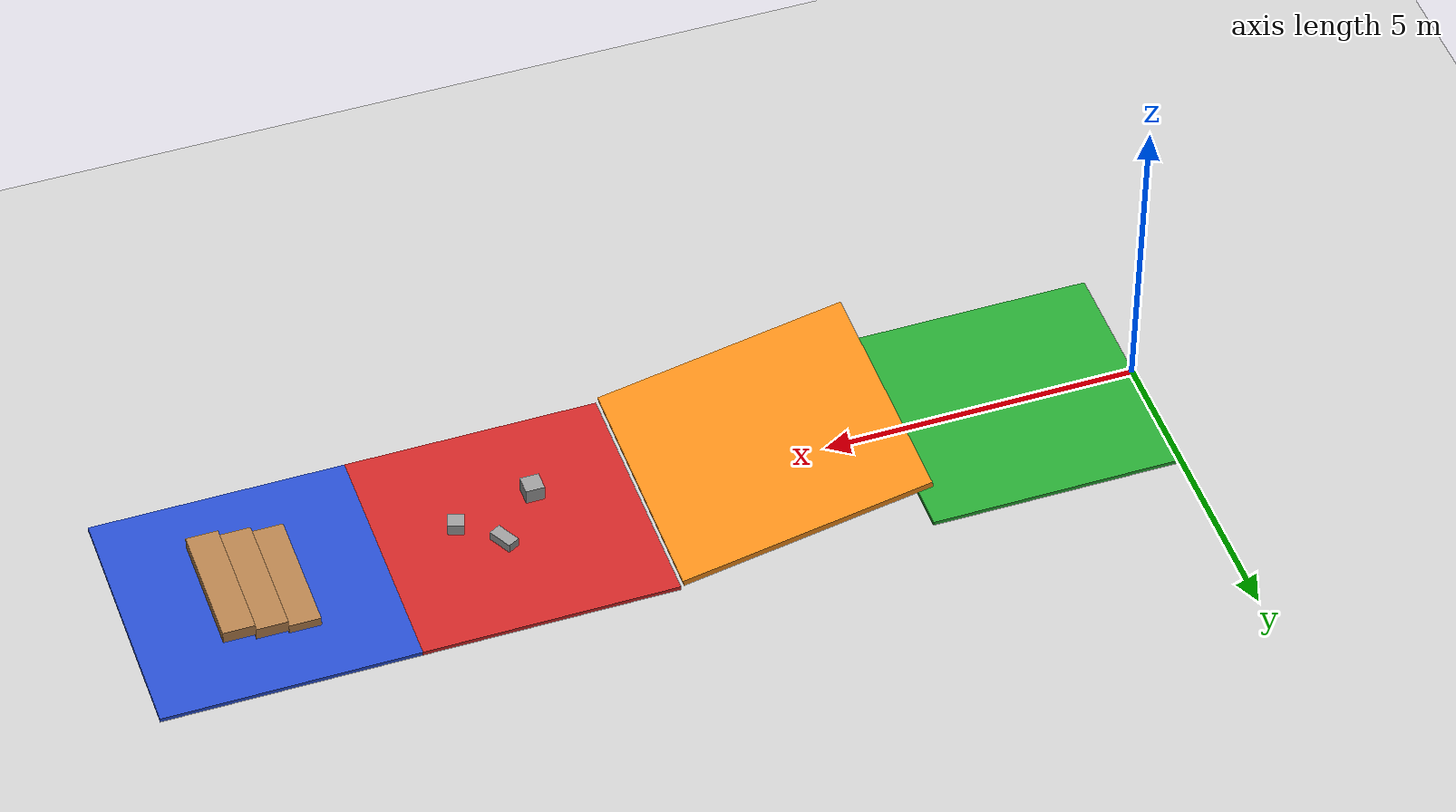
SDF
<!-- File: ~/terrain_locomotion_ws/src/terrain_locomotion/worlds/terrain_world.world -->

<?xml version="1.0"?>
<sdf version="1.6">
  <world name="terrain_world">

    <!-- Physics settings -->
    <physics type="ode">
      <max_step_size>0.001</max_step_size>
      <real_time_factor>1.0</real_time_factor>
      <real_time_update_rate>1000</real_time_update_rate>
    </physics>

    <!-- Lighting -->
    <include>
      <uri>model://sun</uri>
    </include>

    <!-- Ground plane -->
    <include>
      <uri>model://ground_plane</uri>
    </include>

    <!-- Flat terrain section (starting area) -->
    <model name="flat_terrain">
      <static>true</static>
      <pose>2 0 0 0 0 0</pose>
      <link name="link">
        <collision name="collision">
          <geometry>
            <box>
              <size>4 4 0.1</size>
            </box>
          </geometry>
        </collision>
        <visual name="visual">
          <geometry>
            <box>
              <size>4 4 0.1</size>
            </box>
          </geometry>
          <material>
            <script>
              <name>Gazebo/Green</name>
            </script>
          </material>
        </visual>
      </link>
    </model>

    <!-- Sloped terrain section -->
    <model name="slope_terrain">
      <static>true</static>
      <pose>6 0 0.5 0 0.2 0</pose>
      <link name="link">
        <collision name="collision">
          <geometry>
            <box>
              <size>4 4 0.1</size>
            </box>
          </geometry>
        </collision>
        <visual name="visual">
          <geometry>
            <box>
              <size>4 4 0.1</size>
            </box>
          </geometry>
          <material>
            <script>
              <name>Gazebo/Orange</name>
            </script>
          </material>
        </visual>
      </link>
    </model>

    <!-- Rubble terrain section -->
    <model name="rubble_base">
      <static>true</static>
      <pose>10 0 0 0 0 0</pose>
      <link name="link">
        <collision name="collision">
          <geometry>
            <box>
              <size>4 4 0.1</size>
            </box>
          </geometry>
        </collision>
        <visual name="visual">
          <geometry>
            <box>
              <size>4 4 0.1</size>
            </box>
          </geometry>
          <material>
            <script>
              <name>Gazebo/Red</name>
            </script>
          </material>
        </visual>
      </link>
    </model>

    <!-- Add rubble obstacles -->
    <model name="rubble_1">
      <static>true</static>
      <pose>9.5 -0.5 0.15 0 0 0</pose>
      <link name="link">
        <collision name="collision">
          <geometry>
            <box>
              <size>0.3 0.3 0.3</size>
            </box>
          </geometry>
        </collision>
        <visual name="visual">
          <geometry>
            <box>
              <size>0.3 0.3 0.3</size>
            </box>
          </geometry>
          <material>
            <script>
              <name>Gazebo/Grey</name>
            </script>
          </material>
        </visual>
      </link>
    </model>

    <model name="rubble_2">
      <static>true</static>
      <pose>10.2 0.3 0.1 0 0 0.5</pose>
      <link name="link">
        <collision name="collision">
          <geometry>
            <box>
              <size>0.2 0.4 0.2</size>
            </box>
          </geometry>
        </collision>
        <visual name="visual">
          <geometry>
            <box>
              <size>0.2 0.4 0.2</size>
            </box>
          </geometry>
          <material>
            <script>
              <name>Gazebo/Grey</name>
            </script>
          </material>
        </visual>
      </link>
    </model>

    <model name="rubble_3">
      <static>true</static>
      <pose>10.8 -0.2 0.12 0 0 -0.3</pose>
      <link name="link">
        <collision name="collision">
          <geometry>
            <box>
              <size>0.25 0.25 0.24</size>
            </box>
          </geometry>
        </collision>
        <visual name="visual">
          <geometry>
            <box>
              <size>0.25 0.25 0.24</size>
            </box>
          </geometry>
          <material>
            <script>
              <name>Gazebo/Grey</name>
            </script>
          </material>
        </visual>
      </link>
    </model>

    <!-- Stairs terrain section -->
    <model name="stairs_base">
      <static>true</static>
      <pose>14 0 0 0 0 0</pose>
      <link name="link">
        <collision name="collision">
          <geometry>
            <box>
              <size>4 4 0.1</size>
            </box>
          </geometry>
        </collision>
        <visual name="visual">
          <geometry>
            <box>
              <size>4 4 0.1</size>
            </box>
          </geometry>
          <material>
            <script>
              <name>Gazebo/Blue</name>
            </script>
          </material>
        </visual>
      </link>
    </model>

    <!-- Add stairs -->
    <model name="stair_1">
      <static>true</static>
      <pose>13.5 0 0.1 0 0 0</pose>
      <link name="link">
        <collision name="collision">
          <geometry>
            <box>
              <size>0.5 2 0.2</size>
            </box>
          </geometry>
        </collision>
        <visual name="visual">
          <geometry>
            <box>
              <size>0.5 2 0.2</size>
            </box>
          </geometry>
          <material>
            <script>
              <name>Gazebo/Wood</name>
            </script>
          </material>
        </visual>
      </link>
    </model>

    <model name="stair_2">
      <static>true</static>
      <pose>14.0 0 0.2 0 0 0</pose>
      <link name="link">
        <collision name="collision">
          <geometry>
            <box>
              <size>0.5 2 0.2</size>
            </box>
          </geometry>
        </collision>
        <visual name="visual">
          <geometry>
            <box>
              <size>0.5 2 0.2</size>
            </box>
          </geometry>
          <material>
            <script>
              <name>Gazebo/Wood</name>
            </script>
          </material>
        </visual>
      </link>
    </model>

    <model name="stair_3">
      <static>true</static>
      <pose>14.5 0 0.3 0 0 0</pose>
      <link name="link">
        <collision name="collision">
          <geometry>
            <box>
              <size>0.5 2 0.2</size>
            </box>
          </geometry>
        </collision>
        <visual name="visual">
          <geometry>
            <box>
              <size>0.5 2 0.2</size>
            </box>
          </geometry>
          <material>
            <script>
              <name>Gazebo/Wood</name>
            </script>
          </material>
        </visual>
      </link>
    </model>

  </world>
</sdf>
